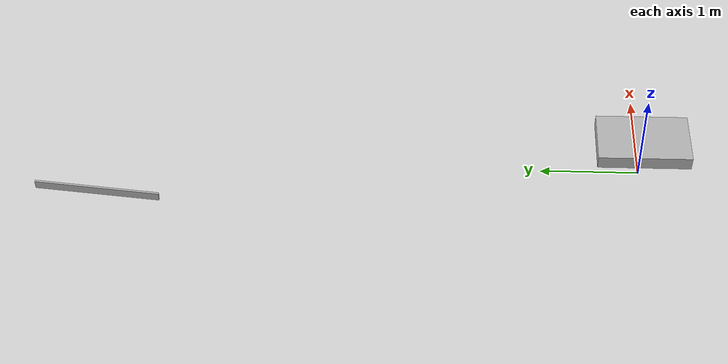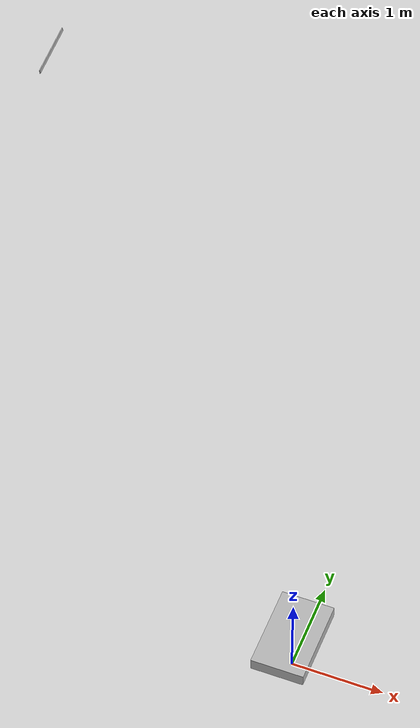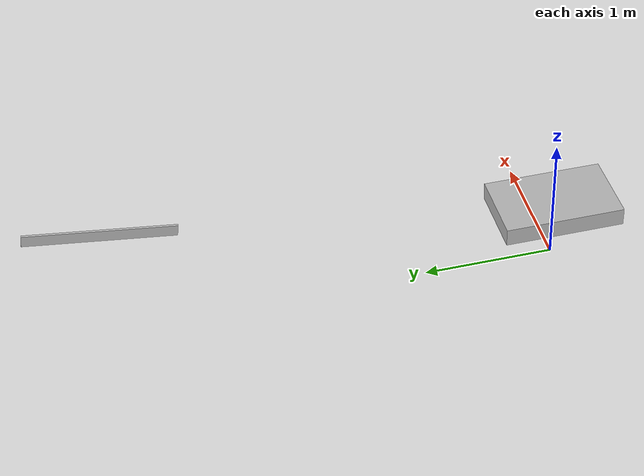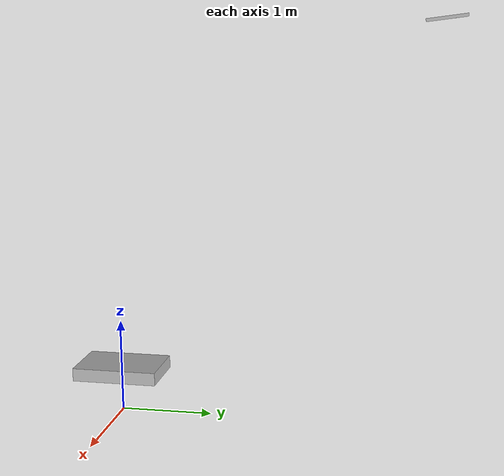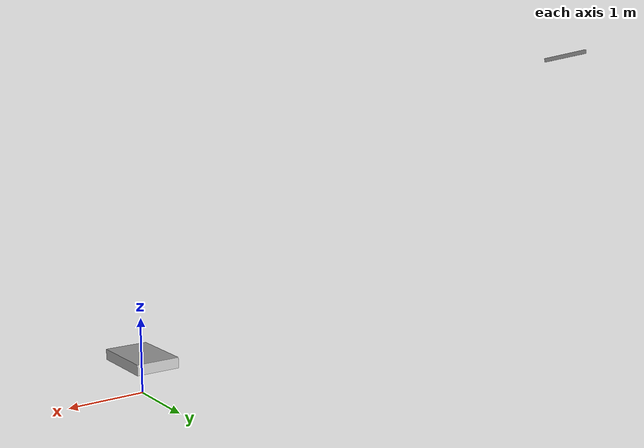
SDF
<?xml version='1.0'?>
<sdf version='1.4'>
<model name="Rover_CAD">
  <static>1</static>

  <link name='chassis'>						<!--> Chassis Begins <-->
    <pose>0 0 0.466 0 0 0</pose>
    <collision name='chassis_collision'>
      <geometry>
        <box>
          <size>0.57 0.919 0.140</size>				<!--> Chassis Collision <-->
        </box>
      </geometry>
    </collision>

    <visual name='chassis_visual'>
      <geometry>
        <box>
          <size>0.57 0.919 0.140</size>				<!--> Chassis Visual <-->
        </box>
      </geometry>
    </visual>
  </link>							<!--> Chassis Ends <-->

                <!-- Left Rocker 1 -->
                <link name='left_rocker_1'>
                        <pose>-4.0 3.42 4.3 0.13 0 0</pose>
                        <collision name='lrock_link_1_coll'>
                                <geometry>
                                        <box>
                                                <size>0.01 0.594 0.047</size>
                                        </box>
                                </geometry>
                        </collision>

                        <visual name='lrock_link_1_vis'>
                                <geometry>
                                        <box>
                                                <size>0.01 0.594 0.047</size>
                                        </box>
                                </geometry>
                        </visual>
                </link>

</model>
</sdf>
